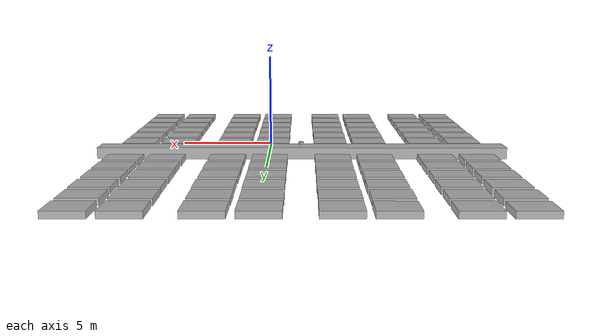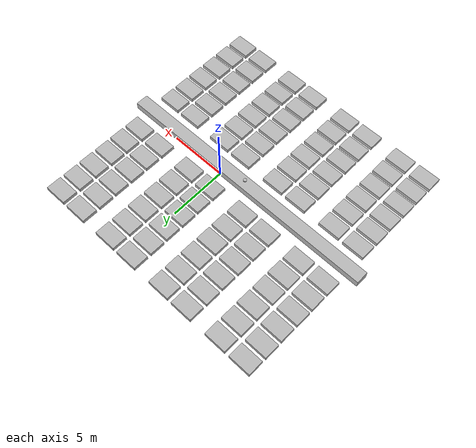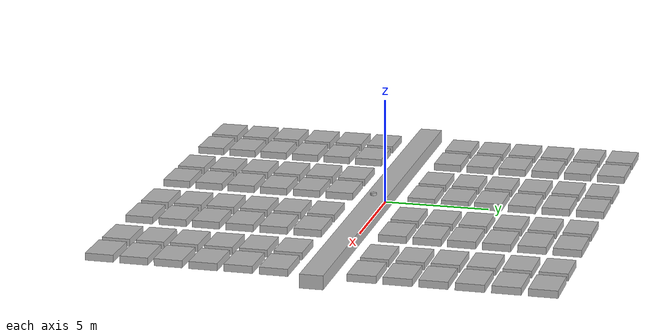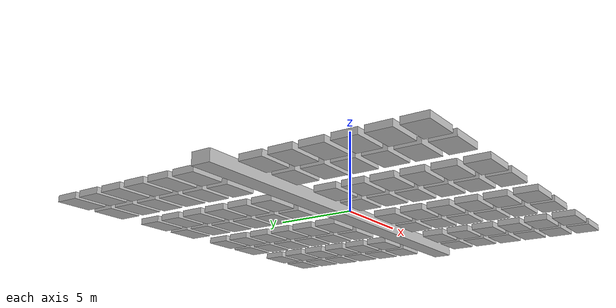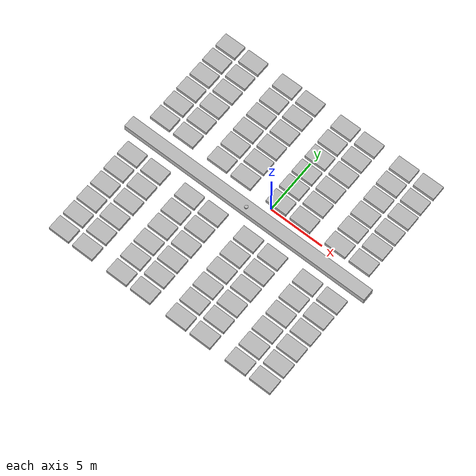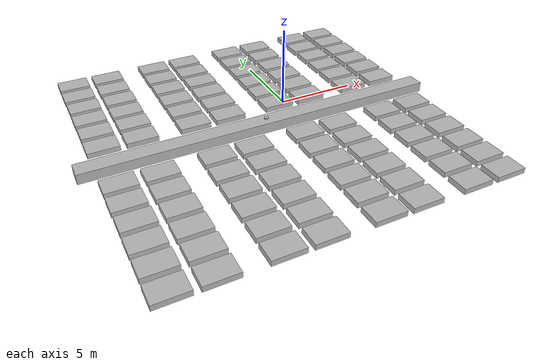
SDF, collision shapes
<?xml version="1.0" ?>
<sdf version="1.9">
  <model name="grid">
    <link name="grid_link">
      <visual name="visual">
        <geometry>
          <mesh>
            <!--solar_grid_free.dae or solar_grid_cross.dae-->
            <uri>mesh/solar_grid.dae</uri>
            <scale>1 1 1</scale>
            <!--0.4255 from pixel counting cross, a bit to small-->
          </mesh>
        </geometry>
      </visual>
      <collision name="collision">
        <geometry>
          <mesh>
            <uri>mesh/solar_grid.dae</uri>
            <scale>1 1 1</scale>
          </mesh>
        </geometry>
      </collision>
      <inertial>
        <mass>20000</mass> <!-- kg -->
        <inertia>
          <ixx>120000</ixx>
          <iyy>393000</iyy>
          <izz>446000</izz>
        </inertia>
      </inertial>
    </link>

    <!-- Buoyancy plugin -->
    <plugin name="vrx::PolyhedraBuoyancyDrag"
            filename="libPolyhedraBuoyancyDrag.so">
      <fluid_density>1000</fluid_density>
      <fluid_level>0.5</fluid_level>
      <linear_drag>125.0</linear_drag>
      <angular_drag>20.0</angular_drag>
      <buoyancy name="grid_buoyancy">
        <link_name>grid_link</link_name>
        <pose>0 0 0.0 0 0 0</pose>
        <geometry>
          <box>
            <size>23 22 0.6</size>
          </box>
        </geometry>
      </buoyancy>
      <wavefield>
        <topic>/vrx/wavefield/parameters</topic>
      </wavefield>
    </plugin>

    <!-- GPS -->
    <joint name='gps_grid_joint' type='revolute'>
      <pose relative_to='grid_link'>-1.7 -1 -0.3 0 0 0</pose>
      <parent>grid_link</parent>
      <child>gps_grid_link</child>
      <axis>
        <xyz>0 0 1</xyz>
        <limit>
          <lower>0</lower>
          <upper>0</upper>
          <effort>1000</effort>
          <velocity>0</velocity>
        </limit>
        <dynamics>
          <spring_reference>0</spring_reference>
          <spring_stiffness>0</spring_stiffness>
        </dynamics>
      </axis>
    </joint>
    <link name='gps_grid_link'>
      <pose relative_to='gps_grid_joint'>0 0 0 0 0 0</pose>
      <inertial>
        <pose>0 0 0 0 0 0</pose>
        <mass>1</mass>
        <inertia>
          <ixx>0.006458</ixx>
          <ixy>0</ixy>
          <ixz>0</ixz>
          <iyy>0.006458</iyy>
          <iyz>0</iyz>
          <izz>0.01125</izz>
        </inertia>
      </inertial>
      <collision name='gps_grid_link_fixed_joint_lump__gps_grid_collision_base_collision'>
        <pose>0 0 0.025 0 0 0</pose>
        <geometry>
          <cylinder>
            <length>0.05</length>
            <radius>0.015</radius>
          </cylinder>
        </geometry>
      </collision>
      <collision name='gps_grid_link_fixed_joint_lump__gps_grid_collision_antenna_collision_1'>
        <pose>0 0 0.11 0 0 0</pose>
        <geometry>
          <cylinder>
            <length>0.1</length>
            <radius>0.15</radius>
          </cylinder>
        </geometry>
      </collision>
      <visual name='gps_grid_link_fixed_joint_lump__gps_grid_visual_visual'>
        <pose>0 0 0 0 0 0</pose>
        <geometry>
          <mesh>
            <scale>1 1 1</scale>
            <uri>package://sensors/gps/mesh/gps.dae</uri>
          </mesh>
        </geometry>
      </visual>
      <sensor name='navsat' type='navsat'>
        <always_on>true</always_on>
        <update_rate>20</update_rate>
      </sensor>
    </link>

  </model>
</sdf>
